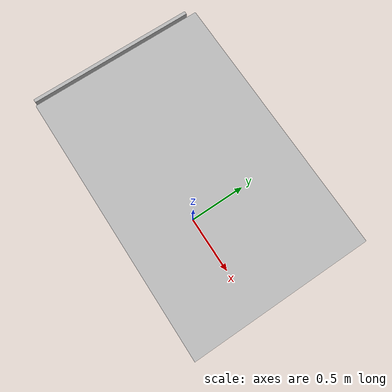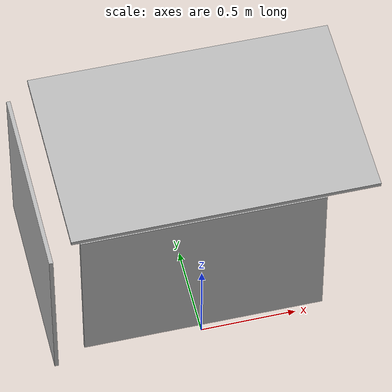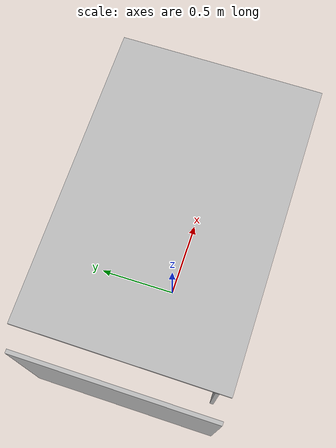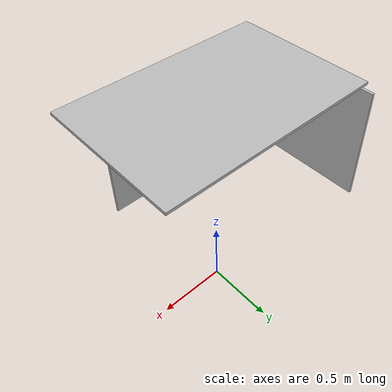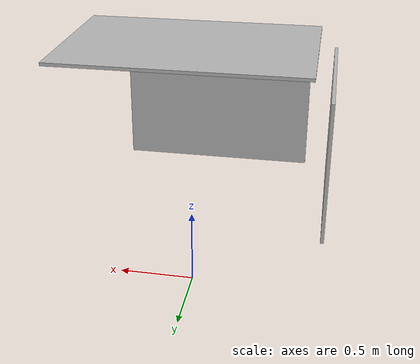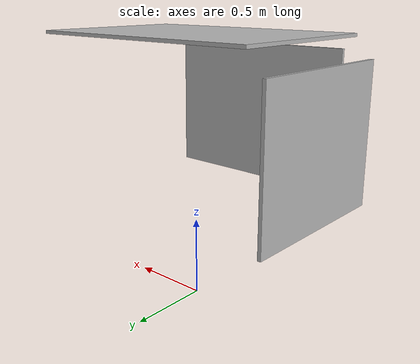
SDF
<?xml version="1.0"?>
<sdf version="1.7">
	<!-- One can change this world to his needs or use another one. -->

	<world name="summer_school_demo">

		<model name="TableRoof">
			<pose> 0.0 0.0 1.65 0.0 0.0 0.0</pose>
			<static>true</static>
			<link name='linkTableRoof'>
				<pose>0 0 0 0 0 0</pose>

				<collision name="my_collisionTableRoof">
					<pose>0 0 0 0 0 0</pose>
					<geometry>
						<box>
							<size>1.5 1.0 0.02</size>
						</box>
					</geometry>
				</collision>

				<visual name="my_visualTableRoof">
					<geometry>
						<box>
							<size>1.5 1.0 0.02</size>
						</box>
					</geometry>
				</visual>

				<self_collide>0</self_collide>
				<gravity>1</gravity>
			</link>
		</model>

		<model name="TableBehind">
			<pose> -0.85 0.0 1.10 0.0 0.0 0.0</pose>
			<static>true</static>
			<link name='linkTableBehind'>
				<pose>0 0 0 0 0 0</pose>

				<collision name="my_collisionlinkTableBehind">
					<pose>0 0 0 0 0 0</pose>
					<geometry>
						<box>
							<size>0.02 1.0 0.85</size>
						</box>
					</geometry>
				</collision>

				<visual name="my_visuallinkTableBehind">
					<geometry>
						<box>
							<size>0.02 1.0 0.85</size>
						</box>
					</geometry>
				</visual>

				<self_collide>0</self_collide>
				<gravity>1</gravity>
			</link>
		</model>

		<model name="TableRight">
			<pose>-0.1 -0.45 1.15 0 0 0 </pose>
			<static>true</static>
			<link name='linkTableRight'>
				<pose>0 0 0 0 0 0</pose>

				<collision name="my_collisionTableRight">
		 			<pose>0 0 0 0 0 0</pose>
					<geometry>
		        <box>
		          <size>1.2 0.02 0.85</size>
		        </box>
		            </geometry>
	            </collision>

				<visual name="my_visualTableRight">
					<geometry>
		        <box>
					<size>1.2 0.02 0.85</size>
		        </box>
		           </geometry>
	            </visual>

				<self_collide>0</self_collide>
				<gravity>1</gravity>
			</link>
        </model>

	</world>
</sdf>
